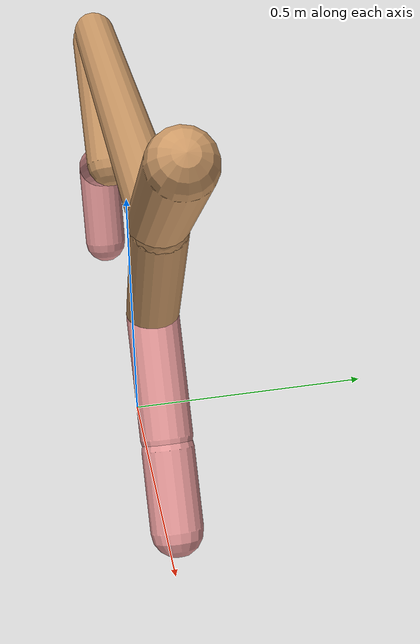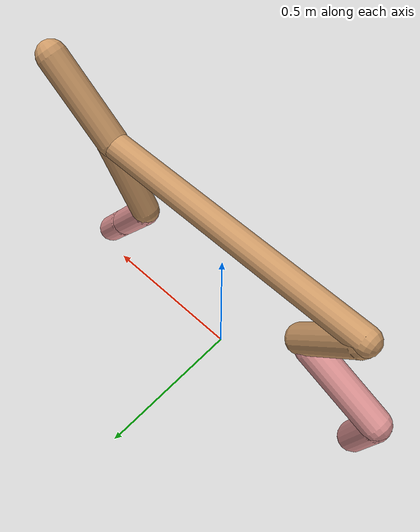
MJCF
<mujoco model="cheetah">
  <compiler angle="radian" coordinate="local" inertiafromgeom="true" settotalmass="14" />
  <default>
    <joint armature=".1" damping=".01" limited="true" solimplimit="0 .8 .03" solreflimit=".02 1" stiffness="8" />
    <geom conaffinity="0" condim="3" contype="1" friction="0.8 .1 .1" rgba="0.8 0.6 .4 1" solimp="0.0 0.8 0.01" solref="0.02 1" />
    <motor ctrllimited="true" ctrlrange="-1 1" />
  </default>
  <size nstack="300000" nuser_geom="1" />
  <option gravity="0 0 -9.81" timestep="0.01" />
  <worldbody>
    <body name="torso" pos="0.0 0.0 0.6765158154295902">
      <joint armature="0" axis="1 0 0" damping="0" limited="false" name="ignorex" pos="0 0 0" stiffness="0" type="slide" />
      <joint armature="0" axis="0 0 1" damping="0" limited="false" name="ignorez" pos="0 0 0" stiffness="0" type="slide" />
      <joint armature="0" axis="0 1 0" damping="0" limited="false" name="ignorey" pos="0 0 0" stiffness="0" type="hinge" />
      <geom fromto="-0.5 0.0 0.0 0.46556195208577456 0.0 0.0" name="torso" size="0.04405820835364611" type="capsule" />
      <geom axisangle="0 1 0 .87" name="head" pos="0.5655619520857745 0.0 0.1" size="0.04833356333031751 0.15" type="capsule" />

      <body name="bthigh" pos="-.5 0 0">
        <joint axis="0 1 0" damping="6" name="bthigh" pos="0 0 0" range="-.52 1.05" stiffness="240" type="hinge" />
        <geom axisangle="0 1 0 -3.8" name="bthigh" pos="0.09824051592699824 0.0 -0.1277126707050977" size="0.04931221786390062 0.1421142315570259" type="capsule" />
        <body name="bshin" pos="0.15648103185399648 0.0 -0.24542534141019542">
          <joint axis="0 1 0" damping="4.5" name="bshin" pos="0 0 0" range="-.785 .785" stiffness="180" type="hinge" />
          <geom axisangle="0 1 0 -2.03" name="bshin" pos="-0.13732988645276673 0.0 -0.06866494322638336" rgba="0.9 0.6 0.6 1" size="0.04931221786390062 0.14701472230037163" type="capsule" />
          <body name="bfoot" pos="-0.27465977290553345 0.0 -0.13732988645276673">
            <joint axis="0 1 0" damping="3" name="bfoot" pos="0 0 0" range="-.4 .785" stiffness="120" type="hinge" />
            <geom axisangle="0 1 0 -.27" name="bfoot" pos="0.029447242917153768 0.0 -0.09521275209879719" rgba="0.9 0.6 0.6 1" size="0.04931221786390062 0.09212922597489956" type="capsule" />
            <inertial mass="10" />
          </body>
        </body>
      </body>
      <body name="fthigh" pos="0.46556195208577456 0.0 0.0">
        <joint axis="0 1 0" damping="4.5" name="fthigh" pos="0 0 0" range="-1.5 0.8" stiffness="180" type="hinge" />
        <geom axisangle="0 1 0 .52" name="fthigh" pos="-0.06792246696815848 0.0 -0.11643851480255739" size="0.044793164009298704 0.12887685553127284" type="capsule" />
        <body name="fshin" pos="-0.13584493393631697 0.0 -0.23287702960511478">
          <joint axis="0 1 0" damping="3" name="fshin" pos="0 0 0" range="-1.2 1.1" stiffness="120" type="hinge" />
          <geom axisangle="0 1 0 -.6" name="fshin" pos="0.06307601062639857 0.0 -0.08733601471347495" rgba="0.9 0.6 0.6 1" size="0.044793164009298704 0.10271388485951068" type="capsule" />
          <body name="ffoot" pos="0.12615202125279715 0.0 -0.1746720294269499">
            <joint axis="0 1 0" damping="1.5" name="ffoot" pos="0 0 0" range="-3.1 -0.3" stiffness="60" type="hinge" />
            <geom axisangle="0 1 0 -.6" name="ffoot" pos="0.04382651490971238 0.0 -0.06817457874844149" rgba="0.9 0.6 0.6 1" size="0.044793164009298704 0.06782992396382781" type="capsule" />
            <inertial mass="10" />
          </body>
        </body>
      </body>
    </body>
  </worldbody>
  <actuator>
    <motor gear="120" joint="bthigh" name="bthigh" />
    <motor gear="90" joint="bshin" name="bshin" />
    <motor gear="60" joint="bfoot" name="bfoot" />
    <motor gear="120" joint="fthigh" name="fthigh" />
    <motor gear="60" joint="fshin" name="fshin" />
    <motor gear="30" joint="ffoot" name="ffoot" />
  </actuator>
</mujoco>
